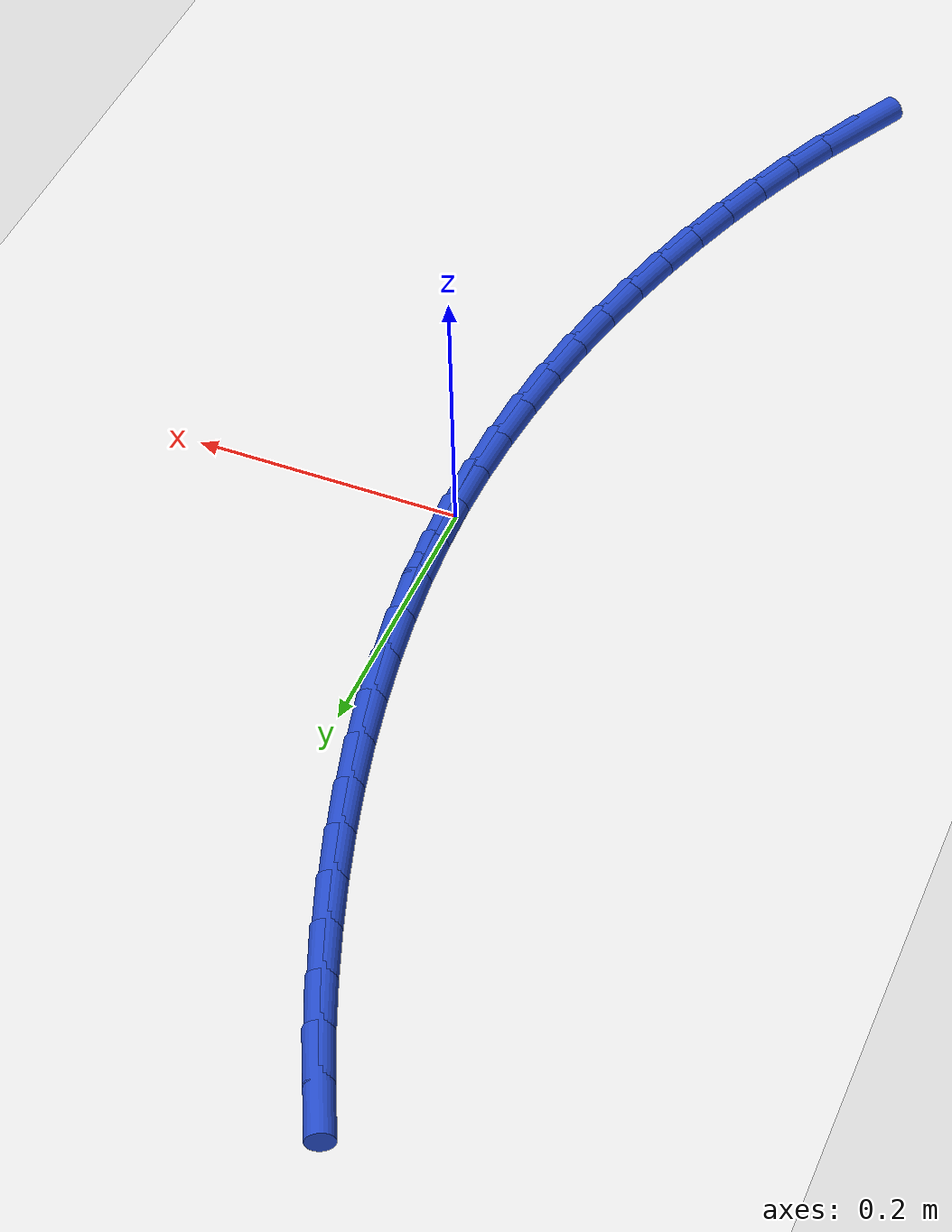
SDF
<sdf version="1.6">
 <world name="default">
  <model name="ground_plane">
   <static>1</static>
   <link name="link">
    <collision name="collision">
     <geometry><plane><normal>0 0 1</normal><size>100 100</size></plane></geometry>
     <surface><friction><ode><mu>100</mu><mu2>50</mu2></ode></friction></surface>
    </collision>
    <visual name="visual">
     <cast_shadows>0</cast_shadows>
     <geometry><plane><normal>0 0 1</normal><size>100 100</size></plane></geometry>
     <material>
      <script><uri>file://media/materials/scripts/gazebo.material</uri><name>Gazebo/WhiteGlow</name></script>
     </material>
    </visual>
   </link>
  </model>
  <model name="line">
   <link name="link_0">
    <pose>2.0816681711721685e-17 6.245004513516506e-17 0.01 0 1.57 -1.5462566174582215</pose>
    <collision name="collision">
     <geometry><cylinder><radius>0.01</radius><length>0.08</length></cylinder></geometry>
    </collision>
    <visual name="visual">
     <material>
      <script><name>Gazebo/Blue</name><uri>file://media/materials/scripts/gazebo.material</uri></script>
     </material>
     <geometry><cylinder><radius>0.01</radius><length>0.08</length></cylinder></geometry>
    </visual>
   </link>
   <link name="link_1">
    <pose>-0.0009177256315638624 0.03739006824693077 0.01 0 1.57 -1.5058529207526425</pose>
    <collision name="collision">
     <geometry><cylinder><radius>0.01</radius><length>0.08</length></cylinder></geometry>
    </collision>
    <visual name="visual">
     <material>
      <script><name>Gazebo/Blue</name><uri>file://media/materials/scripts/gazebo.material</uri></script>
     </material>
     <geometry><cylinder><radius>0.01</radius><length>0.08</length></cylinder></geometry>
    </visual>
   </link>
   <link name="link_2">
    <pose>-0.00335029463803867 0.07479414492779995 0.01 0 1.57 -1.4672709662551422</pose>
    <collision name="collision">
     <geometry><cylinder><radius>0.01</radius><length>0.08</length></cylinder></geometry>
    </collision>
    <visual name="visual">
     <material>
      <script><name>Gazebo/Blue</name><uri>file://media/materials/scripts/gazebo.material</uri></script>
     </material>
     <geometry><cylinder><radius>0.01</radius><length>0.08</length></cylinder></geometry>
    </visual>
   </link>
   <link name="link_3">
    <pose>-0.007233058144969507 0.11216549425413652 0.01 0 1.57 -1.430452798421062</pose>
    <collision name="collision">
     <geometry><cylinder><radius>0.01</radius><length>0.08</length></cylinder></geometry>
    </collision>
    <visual name="visual">
     <material>
      <script><name>Gazebo/Blue</name><uri>file://media/materials/scripts/gazebo.material</uri></script>
     </material>
     <geometry><cylinder><radius>0.01</radius><length>0.08</length></cylinder></geometry>
    </visual>
   </link>
   <link name="link_4">
    <pose>-0.012501367277901495 0.1494573804374696 0.01 0 1.57 -1.3953269352057858</pose>
    <collision name="collision">
     <geometry><cylinder><radius>0.01</radius><length>0.08</length></cylinder></geometry>
    </collision>
    <visual name="visual">
     <material>
      <script><name>Gazebo/Blue</name><uri>file://media/materials/scripts/gazebo.material</uri></script>
     </material>
     <geometry><cylinder><radius>0.01</radius><length>0.08</length></cylinder></geometry>
    </visual>
   </link>
   <link name="link_5">
    <pose>-0.019090573162379734 0.18662306768932804 0.01 0 1.57 -1.3618120250505186</pose>
    <collision name="collision">
     <geometry><cylinder><radius>0.01</radius><length>0.08</length></cylinder></geometry>
    </collision>
    <visual name="visual">
     <material>
      <script><name>Gazebo/Blue</name><uri>file://media/materials/scripts/gazebo.material</uri></script>
     </material>
     <geometry><cylinder><radius>0.01</radius><length>0.08</length></cylinder></geometry>
    </visual>
   </link>
   <link name="link_6">
    <pose>-0.026936026923949325 0.22361582022124082 0.01 0 1.57 -1.3298199060829512</pose>
    <collision name="collision">
     <geometry><cylinder><radius>0.01</radius><length>0.08</length></cylinder></geometry>
    </collision>
    <visual name="visual">
     <material>
      <script><name>Gazebo/Blue</name><uri>file://media/materials/scripts/gazebo.material</uri></script>
     </material>
     <geometry><cylinder><radius>0.01</radius><length>0.08</length></cylinder></geometry>
    </visual>
   </link>
   <link name="link_7">
    <pose>-0.035973079688155406 0.26038890224473715 0.01 0 1.57 -1.2992580799029172</pose>
    <collision name="collision">
     <geometry><cylinder><radius>0.01</radius><length>0.08</length></cylinder></geometry>
    </collision>
    <visual name="visual">
     <material>
      <script><name>Gazebo/Blue</name><uri>file://media/materials/scripts/gazebo.material</uri></script>
     </material>
     <geometry><cylinder><radius>0.01</radius><length>0.08</length></cylinder></geometry>
    </visual>
   </link>
   <link name="link_8">
    <pose>-0.04613708258054307 0.29689557797134597 0.01 0 1.57 -1.2700316416066106</pose>
    <collision name="collision">
     <geometry><cylinder><radius>0.01</radius><length>0.08</length></cylinder></geometry>
    </collision>
    <visual name="visual">
     <material>
      <script><name>Gazebo/Blue</name><uri>file://media/materials/scripts/gazebo.material</uri></script>
     </material>
     <geometry><cylinder><radius>0.01</radius><length>0.08</length></cylinder></geometry>
    </visual>
   </link>
   <link name="link_9">
    <pose>-0.05736338672665742 0.333089111612596 0.01 0 1.57 -1.2418852091988863</pose>
    <collision name="collision">
     <geometry><cylinder><radius>0.01</radius><length>0.08</length></cylinder></geometry>
    </collision>
    <visual name="visual">
     <material>
      <script><name>Gazebo/Blue</name><uri>file://media/materials/scripts/gazebo.material</uri></script>
     </material>
     <geometry><cylinder><radius>0.01</radius><length>0.08</length></cylinder></geometry>
    </visual>
   </link>
   <link name="link_10">
    <pose>-0.0695937846546136 0.3689229429635348 0.01 0 1.57 -1.2133597677596022</pose>
    <collision name="collision">
     <geometry><cylinder><radius>0.01</radius><length>0.08</length></cylinder></geometry>
    </collision>
    <visual name="visual">
     <material>
      <script><name>Gazebo/Blue</name><uri>file://media/materials/scripts/gazebo.material</uri></script>
     </material>
     <geometry><cylinder><radius>0.01</radius><length>0.08</length></cylinder></geometry>
    </visual>
   </link>
   <link name="link_11">
    <pose>-0.0828258064759213 0.4043520311468549 0.01 0 1.57 -1.1837099633064239</pose>
    <collision name="collision">
     <geometry><cylinder><radius>0.01</radius><length>0.08</length></cylinder></geometry>
    </collision>
    <visual name="visual">
     <material>
      <script><name>Gazebo/Blue</name><uri>file://media/materials/scripts/gazebo.material</uri></script>
     </material>
     <geometry><cylinder><radius>0.01</radius><length>0.08</length></cylinder></geometry>
    </visual>
   </link>
   <link name="link_12">
    <pose>-0.09708554342652137 0.4393321138210813 0.01 0 1.57 -1.152903792114394</pose>
    <collision name="collision">
     <geometry><cylinder><radius>0.01</radius><length>0.08</length></cylinder></geometry>
    </collision>
    <visual name="visual">
     <material>
      <script><name>Gazebo/Blue</name><uri>file://media/materials/scripts/gazebo.material</uri></script>
     </material>
     <geometry><cylinder><radius>0.01</radius><length>0.08</length></cylinder></geometry>
    </visual>
   </link>
   <link name="link_13">
    <pose>-0.11239931870316211 0.4738189349676631 0.01 0 1.57 -1.1209216302936682</pose>
    <collision name="collision">
     <geometry><cylinder><radius>0.01</radius><length>0.08</length></cylinder></geometry>
    </collision>
    <visual name="visual">
     <material>
      <script><name>Gazebo/Blue</name><uri>file://media/materials/scripts/gazebo.material</uri></script>
     </material>
     <geometry><cylinder><radius>0.01</radius><length>0.08</length></cylinder></geometry>
    </visual>
   </link>
   <link name="link_166">
    <pose>-0.13408165527334276 -0.5097364694823442 0.01 0 1.57 1.0807342106602602</pose>
    <collision name="collision">
     <geometry><cylinder><radius>0.01</radius><length>0.08</length></cylinder></geometry>
    </collision>
    <visual name="visual">
     <material>
      <script><name>Gazebo/Blue</name><uri>file://media/materials/scripts/gazebo.material</uri></script>
     </material>
     <geometry><cylinder><radius>0.01</radius><length>0.08</length></cylinder></geometry>
    </visual>
   </link>
   <link name="link_167">
    <pose>-0.11605303174341125 -0.47594132968483144 0.01 0 1.57 1.124945184965141</pose>
    <collision name="collision">
     <geometry><cylinder><radius>0.01</radius><length>0.08</length></cylinder></geometry>
    </collision>
    <visual name="visual">
     <material>
      <script><name>Gazebo/Blue</name><uri>file://media/materials/scripts/gazebo.material</uri></script>
     </material>
     <geometry><cylinder><radius>0.01</radius><length>0.08</length></cylinder></geometry>
    </visual>
   </link>
   <link name="link_168">
    <pose>-0.09941453937004746 -0.44112900362757734 0.01 0 1.57 1.1645932938969157</pose>
    <collision name="collision">
     <geometry><cylinder><radius>0.01</radius><length>0.08</length></cylinder></geometry>
    </collision>
    <visual name="visual">
     <material>
      <script><name>Gazebo/Blue</name><uri>file://media/materials/scripts/gazebo.material</uri></script>
     </material>
     <geometry><cylinder><radius>0.01</radius><length>0.08</length></cylinder></geometry>
    </visual>
   </link>
   <link name="link_169">
    <pose>-0.0841052764622218 -0.4055363628382862 0.01 0 1.57 1.2001931976713955</pose>
    <collision name="collision">
     <geometry><cylinder><radius>0.01</radius><length>0.08</length></cylinder></geometry>
    </collision>
    <visual name="visual">
     <material>
      <script><name>Gazebo/Blue</name><uri>file://media/materials/scripts/gazebo.material</uri></script>
     </material>
     <geometry><cylinder><radius>0.01</radius><length>0.08</length></cylinder></geometry>
    </visual>
   </link>
   <link name="link_170">
    <pose>-0.07006434132890436 -0.36940027884466187 0.01 0 1.57 1.232213497976777</pose>
    <collision name="collision">
     <geometry><cylinder><radius>0.01</radius><length>0.08</length></cylinder></geometry>
    </collision>
    <visual name="visual">
     <material>
      <script><name>Gazebo/Blue</name><uri>file://media/materials/scripts/gazebo.material</uri></script>
     </material>
     <geometry><cylinder><radius>0.01</radius><length>0.08</length></cylinder></geometry>
    </visual>
   </link>
   <link name="link_171">
    <pose>-0.05723110277007982 -0.33295703788036835 0.01 0 1.57 1.2624504221195774</pose>
    <collision name="collision">
     <geometry><cylinder><radius>0.01</radius><length>0.08</length></cylinder></geometry>
    </collision>
    <visual name="visual">
     <material>
      <script><name>Gazebo/Blue</name><uri>file://media/materials/scripts/gazebo.material</uri></script>
     </material>
     <geometry><cylinder><radius>0.01</radius><length>0.08</length></cylinder></geometry>
    </visual>
   </link>
   <link name="link_172">
    <pose>-0.0455782348996241 -0.29637085945300407 0.01 0 1.57 1.2938187372129595</pose>
    <collision name="collision">
     <geometry><cylinder><radius>0.01</radius><length>0.08</length></cylinder></geometry>
    </collision>
    <visual name="visual">
     <material>
      <script><name>Gazebo/Blue</name><uri>file://media/materials/scripts/gazebo.material</uri></script>
     </material>
     <geometry><cylinder><radius>0.01</radius><length>0.08</length></cylinder></geometry>
    </visual>
   </link>
   <link name="link_173">
    <pose>-0.03514340779174408 -0.2596653234688244 0.01 0 1.57 1.3266559763501344</pose>
    <collision name="collision">
     <geometry><cylinder><radius>0.01</radius><length>0.08</length></cylinder></geometry>
    </collision>
    <visual name="visual">
     <material>
      <script><name>Gazebo/Blue</name><uri>file://media/materials/scripts/gazebo.material</uri></script>
     </material>
     <geometry><cylinder><radius>0.01</radius><length>0.08</length></cylinder></geometry>
    </visual>
   </link>
   <link name="link_174">
    <pose>-0.025971802882288553 -0.22284775659463035 0.01 0 1.57 1.360964775833511</pose>
    <collision name="collision">
     <geometry><cylinder><radius>0.01</radius><length>0.08</length></cylinder></geometry>
    </collision>
    <visual name="visual">
     <material>
      <script><name>Gazebo/Blue</name><uri>file://media/materials/scripts/gazebo.material</uri></script>
     </material>
     <geometry><cylinder><radius>0.01</radius><length>0.08</length></cylinder></geometry>
    </visual>
   </link>
   <link name="link_175">
    <pose>-0.018108601607106256 -0.18592548549722243 0.01 0 1.57 1.3967336100690653</pose>
    <collision name="collision">
     <geometry><cylinder><radius>0.01</radius><length>0.08</length></cylinder></geometry>
    </collision>
    <visual name="visual">
     <material>
      <script><name>Gazebo/Blue</name><uri>file://media/materials/scripts/gazebo.material</uri></script>
     </material>
     <geometry><cylinder><radius>0.01</radius><length>0.08</length></cylinder></geometry>
    </visual>
   </link>
   <link name="link_176">
    <pose>-0.011598985402045838 -0.1489058368434006 0.01 0 1.57 1.433934558695848</pose>
    <collision name="collision">
     <geometry><cylinder><radius>0.01</radius><length>0.08</length></cylinder></geometry>
    </collision>
    <visual name="visual">
     <material>
      <script><name>Gazebo/Blue</name><uri>file://media/materials/scripts/gazebo.material</uri></script>
     </material>
     <geometry><cylinder><radius>0.01</radius><length>0.08</length></cylinder></geometry>
    </visual>
   </link>
   <link name="link_177">
    <pose>-0.0064881357029563345 -0.1117961372999672 0.01 0 1.57 1.4725212264933247</pose>
    <collision name="collision">
     <geometry><cylinder><radius>0.01</radius><length>0.08</length></cylinder></geometry>
    </collision>
    <visual name="visual">
     <material>
      <script><name>Gazebo/Blue</name><uri>file://media/materials/scripts/gazebo.material</uri></script>
     </material>
     <geometry><cylinder><radius>0.01</radius><length>0.08</length></cylinder></geometry>
    </visual>
   </link>
   <link name="link_178">
    <pose>-0.0028212339456863485 -0.07460371353372212 0.01 0 1.57 1.5124269740786933</pose>
    <collision name="collision">
     <geometry><cylinder><radius>0.01</radius><length>0.08</length></cylinder></geometry>
    </collision>
    <visual name="visual">
     <material>
      <script><name>Gazebo/Blue</name><uri>file://media/materials/scripts/gazebo.material</uri></script>
     </material>
     <geometry><cylinder><radius>0.01</radius><length>0.08</length></cylinder></geometry>
    </visual>
   </link>
   <link name="link_179">
    <pose>-0.0006434615660846493 -0.03733589221146615 0.01 0 1.57 1.5535636364426963</pose>
    <collision name="collision">
     <geometry><cylinder><radius>0.01</radius><length>0.08</length></cylinder></geometry>
    </collision>
    <visual name="visual">
     <material>
      <script><name>Gazebo/Blue</name><uri>file://media/materials/scripts/gazebo.material</uri></script>
     </material>
     <geometry><cylinder><radius>0.01</radius><length>0.08</length></cylinder></geometry>
    </visual>
   </link>
   <link name="link_180">
    <pose>1.0408340855860843e-17 6.938893903907228e-18 0.01 0 1.57 -1.5457717423869415</pose>
    <collision name="collision">
     <geometry><cylinder><radius>0.01</radius><length>0.08</length></cylinder></geometry>
    </collision>
    <visual name="visual">
     <material>
      <script><name>Gazebo/Blue</name><uri>file://media/materials/scripts/gazebo.material</uri></script>
     </material>
     <geometry><cylinder><radius>0.01</radius><length>0.08</length></cylinder></geometry>
    </visual>
   </link>
   <link name="link_181">
    <pose>-0.0009360306832811444 0.03739663643387563 0.01 0 1.57 -1.5457717423869413</pose>
    <collision name="collision">
     <geometry><cylinder><radius>0.01</radius><length>0.08</length></cylinder></geometry>
    </collision>
    <visual name="visual">
     <material>
      <script><name>Gazebo/Blue</name><uri>file://media/materials/scripts/gazebo.material</uri></script>
     </material>
     <geometry><cylinder><radius>0.01</radius><length>0.08</length></cylinder></geometry>
    </visual>
   </link>
  </model>
 </world>
</sdf>
